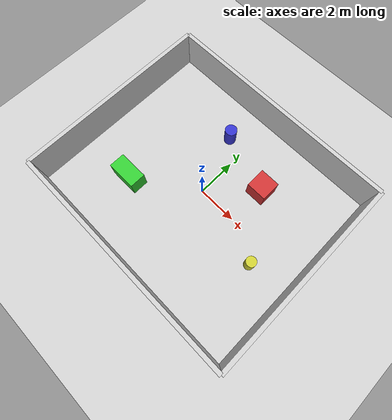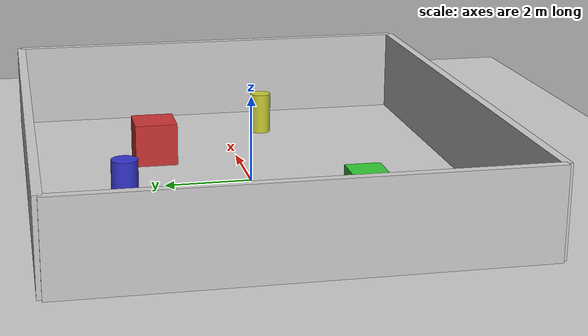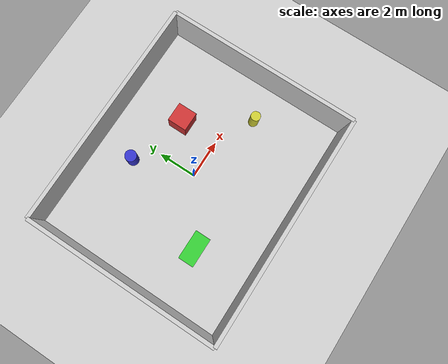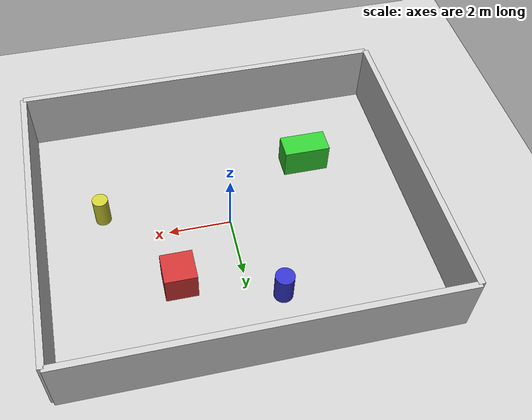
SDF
<?xml version="1.0" ?>
<sdf version="1.6">
  <world name="default">
    <!-- 物理引擎配置 -->
    <physics name="default_physics" default="0" type="ode">
      <max_step_size>0.001</max_step_size>
      <real_time_factor>1</real_time_factor>
      <real_time_update_rate>1000</real_time_update_rate>
    </physics>

    <!-- 地面和光源 -->
    <include>
      <uri>model://ground_plane</uri>
    </include>
    <include>
      <uri>model://sun</uri>
    </include>

    <!-- 围墙 -->
    <model name="wall_north">
      <static>true</static>
      <pose>0 5 1 0 0 0</pose>
      <link name="link">
        <visual name="visual">
          <geometry>
            <box>
              <size>12 0.2 2</size>
            </box>
          </geometry>
          <material>
            <diffuse>0.8 0.8 0.8 1</diffuse>
          </material>
        </visual>
        <collision name="collision">
          <geometry>
            <box>
              <size>12 0.2 2</size>
            </box>
          </geometry>
        </collision>
      </link>
    </model>

    <model name="wall_south">
      <static>true</static>
      <pose>0 -5 1 0 0 0</pose>
      <link name="link">
        <visual name="visual">
          <geometry>
            <box>
              <size>12 0.2 2</size>
            </box>
          </geometry>
          <material>
            <diffuse>0.8 0.8 0.8 1</diffuse>
          </material>
        </visual>
        <collision name="collision">
          <geometry>
            <box>
              <size>12 0.2 2</size>
            </box>
          </geometry>
        </collision>
      </link>
    </model>

    <model name="wall_east">
      <static>true</static>
      <pose>6 0 1 0 0 0</pose>
      <link name="link">
        <visual name="visual">
          <geometry>
            <box>
              <size>0.2 10 2</size>
            </box>
          </geometry>
          <material>
            <diffuse>0.8 0.8 0.8 1</diffuse>
          </material>
        </visual>
        <collision name="collision">
          <geometry>
            <box>
              <size>0.2 10 2</size>
            </box>
          </geometry>
        </collision>
      </link>
    </model>

    <model name="wall_west">
      <static>true</static>
      <pose>-6 0 1 0 0 0</pose>
      <link name="link">
        <visual name="visual">
          <geometry>
            <box>
              <size>0.2 10 2</size>
            </box>
          </geometry>
          <material>
            <diffuse>0.8 0.8 0.8 1</diffuse>
          </material>
        </visual>
        <collision name="collision">
          <geometry>
            <box>
              <size>0.2 10 2</size>
            </box>
          </geometry>
        </collision>
      </link>
    </model>

    <!-- 障碍物盒子 -->
    <model name="box1">
      <static>true</static>
      <pose>2 2 0.5 0 0 0</pose>
      <link name="link">
        <visual name="visual">
          <geometry>
            <box>
              <size>1 1 1</size>
            </box>
          </geometry>
          <material>
            <diffuse>0.8 0.2 0.2 1</diffuse>
          </material>
        </visual>
        <collision name="collision">
          <geometry>
            <box>
              <size>1 1 1</size>
            </box>
          </geometry>
        </collision>
      </link>
    </model>

    <model name="box2">
      <static>true</static>
      <pose>-3 -2 0.5 0 0 0</pose>
      <link name="link">
        <visual name="visual">
          <geometry>
            <box>
              <size>1.5 0.8 1</size>
            </box>
          </geometry>
          <material>
            <diffuse>0.2 0.8 0.2 1</diffuse>
          </material>
        </visual>
        <collision name="collision">
          <geometry>
            <box>
              <size>1.5 0.8 1</size>
            </box>
          </geometry>
        </collision>
      </link>
    </model>

    <!-- 圆柱形障碍物 -->
    <model name="cylinder1">
      <static>true</static>
      <pose>-1 3 0.5 0 0 0</pose>
      <link name="link">
        <visual name="visual">
          <geometry>
            <cylinder>
              <radius>0.3</radius>
              <length>1</length>
            </cylinder>
          </geometry>
          <material>
            <diffuse>0.2 0.2 0.8 1</diffuse>
          </material>
        </visual>
        <collision name="collision">
          <geometry>
            <cylinder>
              <radius>0.3</radius>
              <length>1</length>
            </cylinder>
          </geometry>
        </collision>
      </link>
    </model>

    <model name="cylinder2">
      <static>true</static>
      <pose>4 -1 0.5 0 0 0</pose>
      <link name="link">
        <visual name="visual">
          <geometry>
            <cylinder>
              <radius>0.25</radius>
              <length>1</length>
            </cylinder>
          </geometry>
          <material>
            <diffuse>0.8 0.8 0.2 1</diffuse>
          </material>
        </visual>
        <collision name="collision">
          <geometry>
            <cylinder>
              <radius>0.25</radius>
              <length>1</length>
            </cylinder>
          </geometry>
        </collision>
      </link>
    </model>
  </world>
</sdf>
